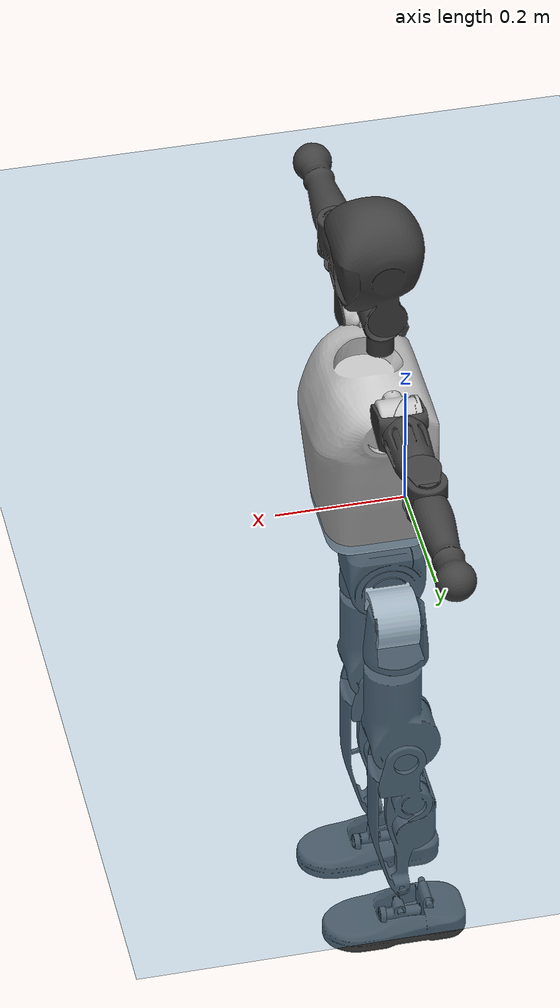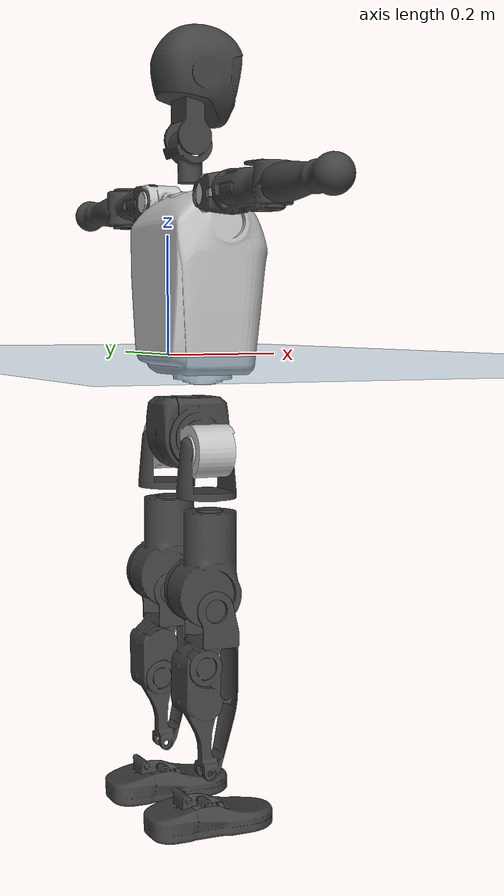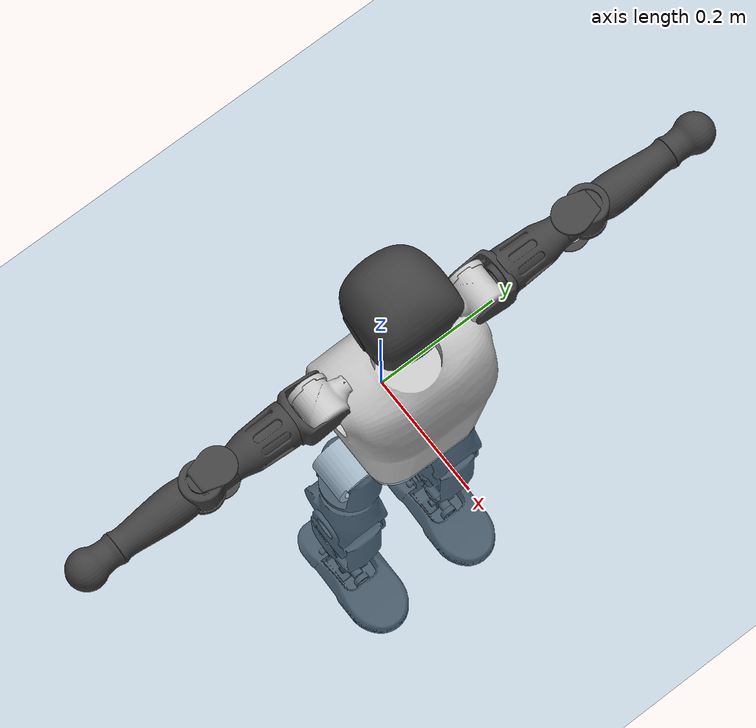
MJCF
<mujoco model="T1">
  <compiler angle="radian" assetdir="assets" balanceinertia="true" inertiafromgeom="false"/>

  <option timestep="0.005" density="1.2" viscosity="2e-05"/>

  <size nkey="1"/>

  <visual>
    <quality shadowsize="8192"/>
    <map shadowclip="0.5"/>
  </visual>

  <default>
    <default class="/">
      <joint armature="0.01" damping="0.01" frictionloss="0.1"/>
      <geom contype="0" conaffinity="0" group="1" solref="-1000 -80"/>
      <site size="0.01 0.005 0.005" group="5"/>
      <general forcelimited="true" biastype="affine" gainprm="25" biasprm="0 -25 -0.6"/>
      <default class="t1">
        <geom rgba="0.25 0.25 0.25 1"/>
        <default class="visual">
          <geom type="mesh" group="2"/>
        </default>
        <default class="collision">
          <geom group="3"/>
        </default>
        <default class="foot">
          <geom size="0.1115 0.05 0.015" type="box" condim="6" group="4" priority="1" solimp="0.015 1 0.015"/>
        </default>
        <default class="reward_collision_sphere">
          <geom group="5" rgba="1 0 0 1"/>
        </default>
      </default>
    </default>
  </default>

  <asset>
    <texture type="skybox" colorspace="auto" name="//unnamed_texture_0" builtin="gradient" rgb1="0.95 0.95 0.95" rgb2="0.95 0.95 0.95" width="100" height="600"/>
    <texture type="2d" colorspace="auto" name="texplane" builtin="checker" rgb1="0.345 0.575 0.748" rgb2="0.345 0.575 0.748" markrgb="1 1 1" width="512" height="512"/>
    <material name="MatPlane" class="/" texture="texplane" texuniform="true" texrepeat="2 2" specular="0.9"/>
    <mesh name="Trunk" class="/" file="Trunk.stl"/>
    <mesh name="H1" class="/" file="H1.stl"/>
    <mesh name="H2" class="/" file="H2.stl"/>
    <mesh name="AL1" class="/" file="AL1.stl"/>
    <mesh name="AL2" class="/" file="AL2.stl"/>
    <mesh name="AL3" class="/" file="AL3.stl"/>
    <mesh name="left_hand_link" class="/" file="left_hand_link.stl"/>
    <mesh name="AR1" class="/" file="AR1.stl"/>
    <mesh name="AR2" class="/" file="AR2.stl"/>
    <mesh name="AR3" class="/" file="AR3.stl"/>
    <mesh name="right_hand_link" class="/" file="right_hand_link.stl"/>
    <mesh name="Waist" class="/" file="Waist.stl"/>
    <mesh name="Hip_Pitch_Left" class="/" file="Hip_Pitch_Left.stl"/>
    <mesh name="Hip_Roll_Left" class="/" file="Hip_Roll_Left.stl"/>
    <mesh name="Hip_Yaw_Left" class="/" file="Hip_Yaw_Left.stl"/>
    <mesh name="Shank_Left" class="/" file="Shank_Left.stl"/>
    <mesh name="Ankle_Cross_Left" class="/" file="Ankle_Cross_Left.stl"/>
    <mesh name="left_foot_link" class="/" file="left_foot_link.stl"/>
    <mesh name="Hip_Pitch_Right" class="/" file="Hip_Pitch_Right.stl"/>
    <mesh name="Hip_Roll_Right" class="/" file="Hip_Roll_Right.stl"/>
    <mesh name="Hip_Yaw_Right" class="/" file="Hip_Yaw_Right.stl"/>
    <mesh name="Shank_Right" class="/" file="Shank_Right.stl"/>
    <mesh name="Ankle_Cross_Right" class="/" file="Ankle_Cross_Right.stl"/>
    <mesh name="right_foot_link" class="/" file="right_foot_link.stl"/>
  </asset>

  <worldbody>
    <geom name="floor" class="/" size="100 100 0.125" type="plane" group="0" material="MatPlane"/>
    <light name="toplight_shadow" class="/" pos="0 0 5" dir="0.0990148 0.0990148 -0.990148" type="directional" ambient="0.04 0.04 0.04" diffuse="0.55 0.55 0.55" specular="0.12 0.12 0.12"/>
    <light name="toplight_fill" class="/" pos="0 0 5" dir="0.0990148 0.0990148 -0.990148" type="directional" castshadow="false" ambient="0.04 0.04 0.04" diffuse="0.3 0.3 0.3" specular="0.08 0.08 0.08"/>
    <body name="trunk" childclass="t1" pos="0.000495784 -0.00193596 0.000357084" quat="0.999999 0.000512211 -0.000376184 -0.000999623">
      <inertial pos="0.0328448 -0.000305143 0.12797" quat="0.999958 -0.00347557 -0.00838406 -0.00104993" mass="7.70775" diaginertia="0.00835116 0.0262681 0.141543"/>
      <joint name="//unnamed_joint_0" type="free" armature="0" damping="0" frictionloss="0"/>
      <geom name="//unnamed_geom_1" class="visual" rgba="0.76 0.76 0.76 1" mesh="Trunk"/>
      <geom name="//unnamed_geom_2" class="collision" size="0.0656517 0.0875356 0.131303" pos="0.0371273 0 0.143545" type="box"/>
      <geom name="//unnamed_geom_3" class="reward_collision_sphere" size="0.100666" pos="0.0371273 0 0.119621"/>
      <geom name="//unnamed_geom_4" class="reward_collision_sphere" size="0.0131303" pos="0.0371273 0.0689409 0"/>
      <geom name="//unnamed_geom_5" class="reward_collision_sphere" size="0.0131303" pos="0.0371273 -0.0689409 0"/>
      <geom name="//unnamed_geom_6" class="reward_collision_sphere" size="0.0131303" pos="0.0371273 0.0867845 0.215318"/>
      <geom name="//unnamed_geom_7" class="reward_collision_sphere" size="0.0131303" pos="0.0371273 -0.0867845 0.215318"/>
      <site name="imu" pos="0.0153961 -0.0171861 0.0143703" size="0.00875356"/>
      <camera name="track" pos="0 -1.62214 0" quat="0.707107 0.707107 0 0" mode="trackcom"/>
      <camera name="ego_camera" pos="0.0754922 0 0.502408" quat="-0.5 -0.5 0.5 0.5"/>
      <body name="H1" pos="0.0379558 -0.00277779 0.288058" quat="0.999999 -0.00109424 -0.000798596 0.000108677">
        <inertial pos="-0.00106079 -0.000187001 0.0711139" quat="0.762743 -0.0178567 -0.0075298 0.646411" mass="0.276673" diaginertia="2.15995e-05 7.9172e-05 0.000362363"/>
        <joint name="AAHead_yaw" pos="0 0 0" axis="0.000378642 0.00521305 0.999986" range="-1.52541 1.58002" armature="0.00726388" damping="0.0146284" frictionloss="0.0841135"/>
        <geom name="//unnamed_geom_8" class="visual" mesh="H1"/>
        <body name="H2" pos="-0.0046835 -0.00103393 0.0746008" quat="1 0.000615605 -0.00026668 0.000456249">
          <inertial pos="0.00499966 0.00225978 0.117343" quat="0.988507 0.097549 -0.0806704 -0.082645" mass="0.405343" diaginertia="0.000182248 0.000666032 0.00424577"/>
          <joint name="Head_pitch" pos="0 0 0" axis="6.59375e-05 -1 0.000325165" range="-1.26878 0.3302" armature="0.00992653" damping="0" frictionloss="0.0797001"/>
          <geom name="//unnamed_geom_9" class="visual" mesh="H2"/>
          <geom name="//unnamed_geom_10" class="collision" size="0.0700285" pos="0.00618788 0 0.131583"/>
          <geom name="//unnamed_geom_11" class="reward_collision_sphere" size="0.078782" pos="0.0123758 0 0.119621"/>
        </body>
      </body>
      <body name="AL1" pos="0.0404052 0.0868375 0.264836" quat="1 0.000175279 0.000347627 -0.000103551">
        <inertial pos="-9.0761e-05 0.0351658 0.00037061" quat="0.49685 0.49271 -0.509238 0.501052" mass="0.3585" diaginertia="0.000125146 0.000439672 0.000695026"/>
        <joint name="Left_Shoulder_Pitch" pos="0 0 0" axis="0.00505127 0.999962 -0.00715388" range="-3.26279 1.19365" armature="0.00770903" damping="0.00880264" frictionloss="0.0843953"/>
        <geom name="//unnamed_geom_12" class="visual" rgba="0.76 0.76 0.76 1" mesh="AL1"/>
        <body name="AL2" pos="0.00058391 0.0405763 7.75349e-05" quat="1 -2.09266e-05 -0.000128733 0.000144235">
          <inertial pos="0.0040898 0.0282168 -0.002004" quat="0.487057 0.510945 -0.488225 0.513173" mass="0.105205" diaginertia="3.68972e-05 0.000125157 0.000442466"/>
          <joint name="Left_Shoulder_Roll" pos="0 0 0" axis="-0.999978 -0.00265084 -0.00607005" range="-1.62942 1.68381" armature="0.00996343" damping="0.000184585" frictionloss="0.0890831"/>
          <geom name="//unnamed_geom_13" class="visual" mesh="AL2"/>
          <body name="AL3" pos="0.000559584 0.0476685 0.00215471" quat="1 -0.000383991 0.000706099 -0.000421405">
            <inertial pos="0.000296547 0.0693726 -0.000884124" quat="0.711511 0.702661 -0.00197693 -0.00397081" mass="0.646632" diaginertia="0.00113124 0.00438303 0.00154343"/>
            <joint name="Left_Elbow_Pitch" pos="0 0 0" axis="0.00440726 -0.999796 0.0197211" stiffness="0.0218242" range="-2.33337 2.25048" armature="0.0106563" damping="0.0360316" frictionloss="0.087699"/>
            <geom name="//unnamed_geom_14" class="visual" mesh="AL3"/>
            <geom name="//unnamed_geom_15" class="collision" size="0.0262607 0.0656517" pos="0 0.0405535 0" quat="0.707105 0.707108 0 0" type="cylinder"/>
            <geom name="//unnamed_geom_16" class="reward_collision_sphere" size="0.0315128"/>
            <body name="left_hand_link" pos="0.000764285 0.11896 -0.00224406" quat="1 -0.000796416 -0.000499217 4.83108e-05">
              <inertial pos="-0.00087351 0.0911498 0.002029" quat="0.708029 0.706183 0.000914571 0.000170448" mass="0.223548" diaginertia="0.000723144 0.00281245 0.000545226"/>
              <joint name="Left_Elbow_Yaw" pos="0 0 0" axis="0.000772196 -0.00157362 0.999998" range="-2.47861 0.0170159" armature="0.00734712" damping="0.0145209" frictionloss="0.0827043"/>
              <geom name="//unnamed_geom_17" class="visual" mesh="left_hand_link"/>
              <geom name="//unnamed_geom_18" class="collision" size="0.0262607 0.0765936" pos="0 0.105439 0" quat="0.707105 0.707108 0 0" type="cylinder"/>
              <geom name="//unnamed_geom_19" class="reward_collision_sphere" size="0.0437678"/>
              <geom name="//unnamed_geom_20" class="reward_collision_sphere" size="0.0306374" pos="0 0.0892177 0"/>
              <geom name="//unnamed_geom_21" class="reward_collision_sphere" size="0.0306374" pos="0 0.17438 0"/>
            </body>
          </body>
        </body>
      </body>
      <body name="AR1" pos="0.0367839 -0.084436 0.260945" quat="1 0.000722937 -4.43037e-05 -0.000154291">
        <inertial pos="0.00217188 -0.0342786 -0.000110485" quat="0.500465 0.487708 -0.521649 0.489448" mass="0.362916" diaginertia="0.000121607 0.000445467 0.000689818"/>
        <joint name="Right_Shoulder_Pitch" pos="0 0 0" axis="-0.00265526 -0.999988 -0.00407066" range="-1.22846 3.30337" armature="0.00853433" damping="0.00399905" frictionloss="0.087386"/>
        <geom name="//unnamed_geom_22" class="visual" rgba="0.76 0.76 0.76 1" mesh="AR1"/>
        <body name="AR2" pos="-0.00279133 -0.0401026 -0.00133384" quat="0.999999 0.000682213 -0.00079725 0.000524561">
          <inertial pos="0.00500083 -0.0288942 0.00187953" quat="0.512941 0.487269 -0.51055 0.488671" mass="0.106319" diaginertia="3.69508e-05 0.000118435 0.000440521"/>
          <joint name="Right_Shoulder_Roll" pos="0 0 0" axis="-0.999912 0.00390522 0.0126579" range="-1.70958 1.50137" armature="0.00892614" damping="0.00923072" frictionloss="0.096909"/>
          <geom name="//unnamed_geom_23" class="visual" mesh="AR2"/>
          <body name="AR3" pos="-0.00177911 -0.0519661 0.00257747" quat="1 0.000122626 0.000274688 0.000293347">
            <inertial pos="0.000509555 -0.0664107 -0.000970967" quat="0.707053 0.70716 -3.41014e-05 -8.32721e-05" mass="0.698489" diaginertia="0.00117943 0.0044572 0.00149145"/>
            <joint name="Right_Elbow_Pitch" pos="0 0 0" axis="-0.00222643 0.99995 -0.00974775" stiffness="0.00878233" range="-2.25253 2.27458" armature="0.00855484" damping="0.00304441" frictionloss="0.0893628"/>
            <geom name="//unnamed_geom_24" class="visual" mesh="AR3"/>
            <geom name="//unnamed_geom_25" class="collision" size="0.0262607 0.0656517" pos="0 -0.0405535 0" quat="0.707105 0.707108 0 0" type="cylinder"/>
            <geom name="//unnamed_geom_26" class="reward_collision_sphere" size="0.0315128"/>
            <body name="right_hand_link" pos="-0.0025255 -0.118346 -0.00239479" quat="1 -0.000239023 -0.000460389 -0.000839236">
              <inertial pos="-0.00109537 -0.0913257 0.00151823" quat="0.703871 0.710306 -0.00547616 -0.00101536" mass="0.214616" diaginertia="0.000770394 0.00287869 0.000530698"/>
              <joint name="Right_Elbow_Yaw" pos="0 0 0" axis="-0.00165722 -0.0114966 0.999933" range="0.0402177 2.42755" armature="0.00968392" damping="0" frictionloss="0.088929"/>
              <geom name="//unnamed_geom_27" class="visual" mesh="right_hand_link"/>
              <geom name="//unnamed_geom_28" class="collision" size="0.0262607 0.0765936" pos="0 -0.105439 0" quat="0.707105 0.707108 0 0" type="cylinder"/>
              <geom name="//unnamed_geom_29" class="reward_collision_sphere" size="0.0437678"/>
              <geom name="//unnamed_geom_30" class="reward_collision_sphere" size="0.0306374" pos="0 -0.0892177 0"/>
              <geom name="//unnamed_geom_31" class="reward_collision_sphere" size="0.0306374" pos="0 -0.17438 0"/>
            </body>
          </body>
        </body>
      </body>
      <body name="Waist" pos="0.03529 0.0029777 -0.138829" quat="0.999999 -0.000772948 -0.000726149 0.000290591">
        <inertial pos="0.00614548 -0.000378657 0.00843848" quat="0.983486 -0.00570856 -0.18089 -0.00128297" mass="1.62429" diaginertia="0.000494569 0.00174456 0.0114969"/>
        <joint name="Waist" pos="0 0 0" axis="-0.0138585 0.0109488 0.999844" range="-1.51982 1.52249" armature="0.00798785" damping="0" frictionloss="0.0907035"/>
        <geom name="//unnamed_geom_32" class="visual" mesh="Waist"/>
        <body name="Hip_Pitch_Left" pos="0.00324267 0.0860843 7.23171e-05" quat="0.999997 1.37909e-05 -0.0023519 -0.000185166">
          <inertial pos="0.00102046 -0.0091399 -0.0219627" quat="0.975082 0.221394 0.014096 0.00139787" mass="0.730905" diaginertia="0.000170863 0.000517421 0.0030752"/>
          <joint name="Left_Hip_Pitch" pos="0 0 0" axis="0.00950835 0.999904 -0.0100573" stiffness="0.00939827" range="-1.85702 1.5743" armature="0.00906753" damping="0.00414309" frictionloss="0.0719653"/>
          <geom name="//unnamed_geom_33" class="visual" rgba="0.76 0.76 0.76 1" mesh="Hip_Pitch_Left"/>
          <body name="Hip_Roll_Left" pos="-0.00371822 -0.00130113 -0.0194651" quat="0.999997 0.00161026 0.00169184 -0.000990465">
            <inertial pos="0.00121249 -0.00207386 -0.0613707" quat="0.704472 -0.0121611 -0.00761055 0.709586" mass="0.264572" diaginertia="0.000158446 0.000556966 0.00131094"/>
            <joint name="Left_Hip_Roll" pos="0 0 0" axis="-0.999889 -0.0141443 0.00475206" stiffness="0.0062138" range="-1.57564 0.198826" armature="0.00878614" damping="0.00430691" frictionloss="0.089248"/>
            <geom name="//unnamed_geom_34" class="visual" mesh="Hip_Roll_Left"/>
            <geom name="//unnamed_geom_35" class="reward_collision_sphere" size="0.0481446"/>
            <body name="Hip_Yaw_Left" pos="0.00265592 0.00242827 -0.0970306" quat="1 0.000449304 0.000499171 8.16661e-05">
              <inertial pos="-0.0034165 -0.00476645 -0.109508" quat="0.698849 -0.0446097 -0.0250033 0.713438" mass="1.38985" diaginertia="0.00222535 0.00846605 0.0062225"/>
              <joint name="Left_Hip_Yaw" pos="0 0 0" axis="0.00269031 0.0107605 -0.999938" stiffness="0.00230631" range="-1.01609 1.00796" armature="0.0087335" damping="0" frictionloss="0.0893785"/>
              <geom name="//unnamed_geom_36" class="visual" mesh="Hip_Yaw_Left"/>
              <geom name="//unnamed_geom_37" class="collision" size="0.0437678 0.0700285" type="cylinder"/>
              <body name="Shank_Left" pos="-0.01193 0.00246802 -0.161527" quat="1 0.000235039 0.00027606 0.00016009">
                <inertial pos="-0.00436909 -0.000227686 -0.146579" quat="0.998152 0.00113338 -0.027293 0.0542843" mass="1.08994" diaginertia="0.00306508 0.0119339 0.00440235"/>
                <joint name="Left_Knee_Pitch" pos="0 0 0" axis="0.00939167 0.999894 0.0111137" range="0.0126632 2.37266" armature="0.00852661" damping="0" frictionloss="0.0872704"/>
                <geom name="//unnamed_geom_38" class="visual" mesh="Shank_Left"/>
                <geom name="//unnamed_geom_39" class="collision" size="0.0437678 0.0656517" pos="0 0 -0.143545" type="cylinder"/>
                <geom name="//unnamed_geom_40" class="reward_collision_sphere" size="0.0568981"/>
                <body name="Ankle_Cross_Left" pos="0.000830178 0.000353567 -0.334236" quat="0.999999 0.000577633 -0.000470582 -0.000728904">
                  <inertial pos="-0.00383681 0.000591785 -0.00707224" quat="0.443614 0.55138 0.551997 0.441005" mass="0.0499939" diaginertia="2.69067e-06 9.2695e-06 2.85276e-05"/>
                  <joint name="Left_Ankle_Pitch" pos="0 0 0" axis="-0.00458956 0.999988 0.00162429" range="-0.801822 0.28537" armature="0.00906751" damping="0.0300405" frictionloss="0.0915013"/>
                  <geom name="//unnamed_geom_41" class="visual" mesh="Ankle_Cross_Left"/>
                  <body name="left_foot_link" pos="-0.0013413 -0.0017583 -0.0122253" quat="0.999999 0.00053959 0.00155942 0.000383226">
                    <inertial pos="-0.00287799 0.00303929 -0.00968006" quat="-0.00314532 0.618951 -0.000782506 0.785423" mass="0.42588" diaginertia="0.000223803 0.000784677 0.0047455"/>
                    <joint name="Left_Ankle_Roll" pos="0 0 0" axis="-0.999969 1.66171e-05 0.00790989" range="-0.445406 0.366901" armature="0.00846851" damping="0.00733682" frictionloss="0.0655249"/>
                    <geom name="//unnamed_geom_42" class="visual" mesh="left_foot_link"/>
                    <geom name="left_foot" class="foot" size="0.104681 0.0504247 0.0106183" pos="0.00618788 0 -0.0179431"/>
                    <geom name="//unnamed_geom_44" class="reward_collision_sphere" size="0.0455185" pos="0.00618788 0 -0.0179431"/>
                    <geom name="//unnamed_geom_45" class="reward_collision_sphere" size="0.0262607" pos="0.0587849 -0.0186546 -0.0179431"/>
                    <geom name="//unnamed_geom_46" class="reward_collision_sphere" size="0.0262607" pos="-0.0433152 -0.0186546 -0.0179431"/>
                    <site name="left_foot" class="foot" pos="0.00618788 0 -0.0179431" size="0.00875356"/>
                  </body>
                </body>
              </body>
            </body>
          </body>
        </body>
        <body name="Hip_Pitch_Right" pos="-0.000897791 -0.0866138 0.000566244" quat="1 0.000109555 0.000356167 0.000332695">
          <inertial pos="-0.00203205 0.00587915 -0.0231671" quat="0.971314 -0.236383 0.0153516 -0.0208937" mass="0.700264" diaginertia="0.000171652 0.000550167 0.00311972"/>
          <joint name="Right_Hip_Pitch" pos="0 0 0" axis="-0.00630185 -0.99998 0.000958382" stiffness="0.000864247" range="-1.55948 1.77405" armature="0.00955956" damping="0.00693003" frictionloss="0.0838841"/>
          <geom name="//unnamed_geom_47" class="visual" rgba="0.76 0.76 0.76 1" mesh="Hip_Pitch_Right"/>
          <body name="Hip_Roll_Right" pos="-0.000561915 -0.0011367 -0.0209513" quat="0.999999 0.000806804 -0.000359377 0.000722237">
            <inertial pos="-0.000821396 0.000615665 -0.0638755" quat="0.708259 -0.00637982 -0.00717681 0.705887" mass="0.269378" diaginertia="0.000163652 0.00055349 0.00133166"/>
            <joint name="Right_Hip_Roll" pos="0 0 0" axis="-0.999857 0.0100199 0.0136471" stiffness="0.0328163" range="-0.249785 1.58663" armature="0.00819636" damping="0.00625715" frictionloss="0.0836564"/>
            <geom name="//unnamed_geom_48" class="visual" mesh="Hip_Roll_Right"/>
            <geom name="//unnamed_geom_49" class="reward_collision_sphere" size="0.0481446"/>
            <body name="Hip_Yaw_Right" pos="0.0015015 -0.00462223 -0.0989165" quat="1 -0.000423753 2.40865e-05 8.4051e-05">
              <inertial pos="-0.0038626 -0.000819848 -0.10287" quat="0.712846 -0.0343227 -0.0297541 0.699848" mass="1.47188" diaginertia="0.00240988 0.0093564 0.00668828"/>
              <joint name="Right_Hip_Yaw" pos="0 0 0" axis="-0.00567618 0.0148857 -0.999873" range="-1.04142 0.981301" armature="0.00938122" damping="0" frictionloss="0.0865465"/>
              <geom name="//unnamed_geom_50" class="visual" mesh="Hip_Yaw_Right"/>
              <geom name="//unnamed_geom_51" class="collision" size="0.0437678 0.0700285" type="cylinder"/>
              <body name="Shank_Right" pos="-0.00722116 -0.000910323 -0.160204" quat="1 -0.000227114 2.77046e-05 -0.000369936">
                <inertial pos="-0.00846137 0.00279357 -0.148725" quat="0.999003 -0.0030625 -0.0254851 -0.0365253" mass="1.21963" diaginertia="0.00323303 0.0121887 0.00489522"/>
                <joint name="Right_Knee_Pitch" pos="0 0 0" axis="0.00477426 -0.999989 -0.00027439" range="-2.33832 0.0399702" armature="0.00903287" damping="0.00555403" frictionloss="0.0842052"/>
                <geom name="//unnamed_geom_52" class="visual" mesh="Shank_Right"/>
                <geom name="//unnamed_geom_53" class="collision" size="0.0437678 0.0656517" pos="0 0 -0.143545" type="cylinder"/>
                <geom name="//unnamed_geom_54" class="reward_collision_sphere" size="0.0568981"/>
                <body name="Ankle_Cross_Right" pos="-0.00202002 0.00347267 -0.336102" quat="0.999999 0.00120959 0.000106864 0.000918781">
                  <inertial pos="-0.00486665 -0.000463892 -0.0115917" quat="0.443002 0.550653 0.552099 0.4424" mass="0.0494067" diaginertia="2.73037e-06 9.17082e-06 2.71827e-05"/>
                  <joint name="Right_Ankle_Pitch" pos="0 0 0" axis="0.00568847 -0.999933 0.0101194" stiffness="0.00596679" range="-0.384248 0.796346" armature="0.00833192" damping="0.00455971" frictionloss="0.0860107"/>
                  <geom name="//unnamed_geom_55" class="visual" mesh="Ankle_Cross_Right"/>
                  <body name="right_foot_link" pos="0.00107435 0.000150118 -0.0148036" quat="1 0.000290238 -0.00034417 -3.97375e-05">
                    <inertial pos="0.000614678 -0.00200566 -0.0110551" quat="-0.00716649 0.61847 0.0100211 0.785712" mass="0.460301" diaginertia="0.000255547 0.000837887 0.00521744"/>
                    <joint name="Right_Ankle_Roll" pos="0 0 0" axis="-0.999982 0.00402223 0.00441522" range="-0.418067 0.406883" armature="0.00975122" damping="0.0161906" frictionloss="0.0986737"/>
                    <geom name="//unnamed_geom_56" class="visual" mesh="right_foot_link"/>
                    <geom name="right_foot" class="foot" size="0.0868017 0.0475755 0.0123289" pos="0.00618788 0 -0.0179431"/>
                    <geom name="//unnamed_geom_58" class="reward_collision_sphere" size="0.0350142"/>
                    <geom name="//unnamed_geom_59" class="reward_collision_sphere" size="0.0262607" pos="0.00618788 0 -0.0179431"/>
                    <geom name="//unnamed_geom_60" class="reward_collision_sphere" size="0.0262607" pos="0.0587849 0.0186546 -0.0179431"/>
                    <geom name="//unnamed_geom_61" class="reward_collision_sphere" size="0.0262607" pos="-0.0433152 0.0186546 -0.0179431"/>
                    <site name="right_foot" class="foot" pos="0.00618788 0 -0.0179431" size="0.00875356"/>
                  </body>
                </body>
              </body>
            </body>
          </body>
        </body>
      </body>
    </body>
  </worldbody>

  <contact>
    <pair class="/" geom1="floor" geom2="left_foot" name="//unnamed_contact_0"/>
    <pair class="/" geom1="floor" geom2="right_foot" name="//unnamed_contact_1"/>
  </contact>

  <actuator>
    <general name="AAHead_yaw" class="/" joint="AAHead_yaw" forcerange="-5.55423 5.55423" gainprm="23.6453" biasprm="0 -23.6453 -0.524359"/>
    <general name="Head_pitch" class="/" joint="Head_pitch" forcerange="-6.7248 6.7248" gainprm="23.6453" biasprm="0 -23.6453 -0.524359"/>
    <general name="Left_Shoulder_Pitch" class="/" joint="Left_Shoulder_Pitch" forcerange="-16.6859 16.6859" gainprm="23.6453" biasprm="0 -23.6453 -0.524359"/>
    <general name="Left_Shoulder_Roll" class="/" joint="Left_Shoulder_Roll" forcerange="-14.9416 14.9416" gainprm="23.6453" biasprm="0 -23.6453 -0.524359"/>
    <general name="Left_Elbow_Pitch" class="/" joint="Left_Elbow_Pitch" forcerange="-17.8921 17.8921" gainprm="23.6453" biasprm="0 -23.6453 -0.524359"/>
    <general name="Left_Elbow_Yaw" class="/" joint="Left_Elbow_Yaw" forcerange="-14.5082 14.5082" gainprm="23.6453" biasprm="0 -23.6453 -0.524359"/>
    <general name="Right_Shoulder_Pitch" class="/" joint="Right_Shoulder_Pitch" forcerange="-14.2464 14.2464" gainprm="23.6453" biasprm="0 -23.6453 -0.524359"/>
    <general name="Right_Shoulder_Roll" class="/" joint="Right_Shoulder_Roll" forcerange="-14.4624 14.4624" gainprm="23.6453" biasprm="0 -23.6453 -0.524359"/>
    <general name="Right_Elbow_Pitch" class="/" joint="Right_Elbow_Pitch" forcerange="-15.7081 15.7081" gainprm="23.6453" biasprm="0 -23.6453 -0.524359"/>
    <general name="Right_Elbow_Yaw" class="/" joint="Right_Elbow_Yaw" forcerange="-15.2873 15.2873" gainprm="23.6453" biasprm="0 -23.6453 -0.524359"/>
    <general name="Waist" class="/" joint="Waist" forcerange="-25.8989 25.8989" gainprm="23.6453" biasprm="0 -23.6453 -0.524359"/>
    <general name="Left_Hip_Pitch" class="/" joint="Left_Hip_Pitch" forcerange="-36.1094 36.1094" gainprm="23.6453" biasprm="0 -23.6453 -0.524359"/>
    <general name="Left_Hip_Roll" class="/" joint="Left_Hip_Roll" forcerange="-23.6953 23.6953" gainprm="23.6453" biasprm="0 -23.6453 -0.524359"/>
    <general name="Left_Hip_Yaw" class="/" joint="Left_Hip_Yaw" forcerange="-29.8988 29.8988" gainprm="23.6453" biasprm="0 -23.6453 -0.524359"/>
    <general name="Left_Knee_Pitch" class="/" joint="Left_Knee_Pitch" forcerange="-59.5542 59.5542" gainprm="23.6453" biasprm="0 -23.6453 -0.524359"/>
    <general name="Left_Ankle_Pitch" class="/" joint="Left_Ankle_Pitch" forcerange="-16.9968 16.9968" gainprm="23.6453" biasprm="0 -23.6453 -0.524359"/>
    <general name="Left_Ankle_Roll" class="/" joint="Left_Ankle_Roll" forcerange="-13.2825 13.2825" gainprm="23.6453" biasprm="0 -23.6453 -0.524359"/>
    <general name="Right_Hip_Pitch" class="/" joint="Right_Hip_Pitch" forcerange="-43.1259 43.1259" gainprm="23.6453" biasprm="0 -23.6453 -0.524359"/>
    <general name="Right_Hip_Roll" class="/" joint="Right_Hip_Roll" forcerange="-26.9434 26.9434" gainprm="23.6453" biasprm="0 -23.6453 -0.524359"/>
    <general name="Right_Hip_Yaw" class="/" joint="Right_Hip_Yaw" forcerange="-27.7341 27.7341" gainprm="23.6453" biasprm="0 -23.6453 -0.524359"/>
    <general name="Right_Knee_Pitch" class="/" joint="Right_Knee_Pitch" forcerange="-52.7576 52.7576" gainprm="23.6453" biasprm="0 -23.6453 -0.524359"/>
    <general name="Right_Ankle_Pitch" class="/" joint="Right_Ankle_Pitch" forcerange="-18.6324 18.6324" gainprm="23.6453" biasprm="0 -23.6453 -0.524359"/>
    <general name="Right_Ankle_Roll" class="/" joint="Right_Ankle_Roll" forcerange="-13.1405 13.1405" gainprm="23.6453" biasprm="0 -23.6453 -0.524359"/>
  </actuator>

  <sensor>
    <gyro site="imu" name="imu_angular_velocity"/>
    <velocimeter site="imu" name="imu_linear_velocity"/>
    <framelinvel objtype="site" objname="left_foot" name="left_foot_global_linear_velocity"/>
    <framelinvel objtype="site" objname="right_foot" name="right_foot_global_linear_velocity"/>
  </sensor>

  <keyframe>
    <key name="home" qpos="0 0 0.6385 1 0 0 0 0 0 0 1.4 0 -0.4 0 -1.4 0 0.4 0 -0.4 0 0 0.8 -0.4 0 0.4 0 0 -0.8 0.4 0"/>
  </keyframe>
</mujoco>
